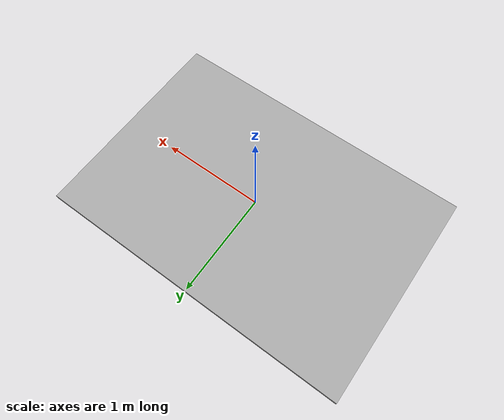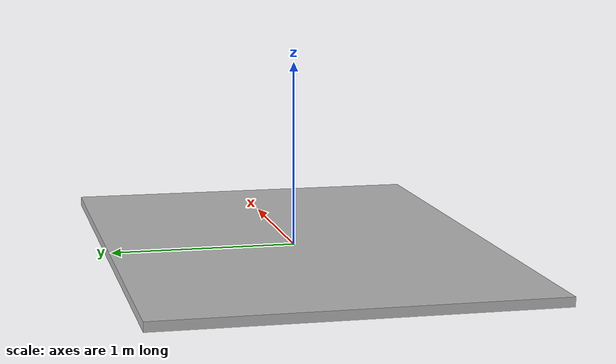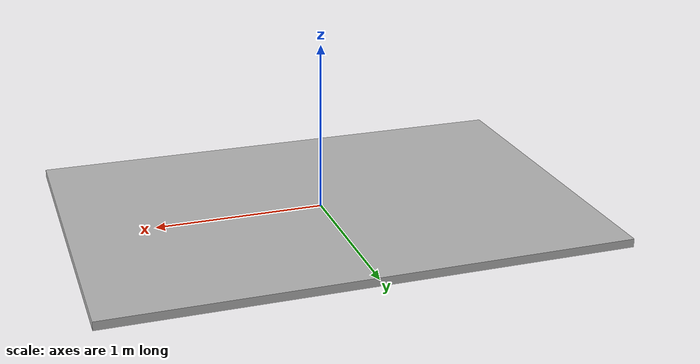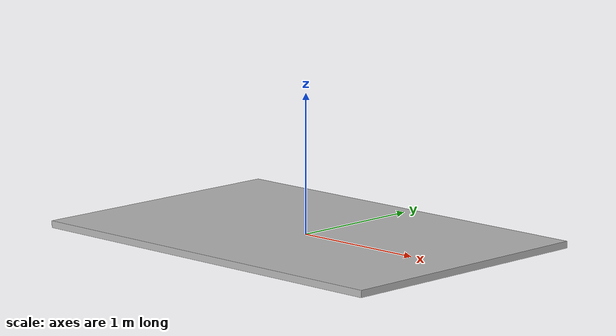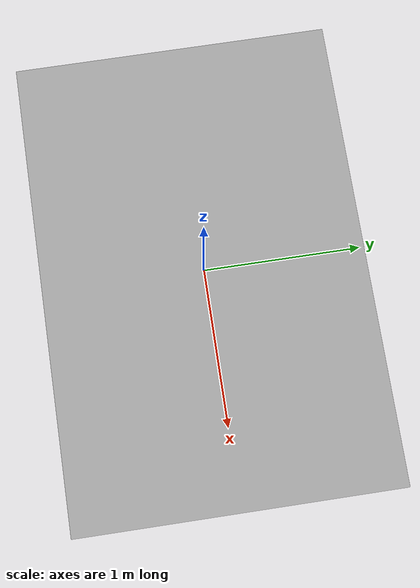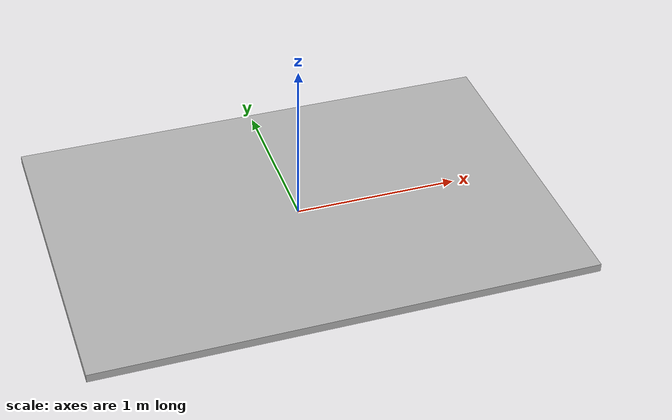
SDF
<?xml version="1.0" ?>
<sdf version="1.5">
  <model name="aruco_marker">
    <static>true</static>
    <link name="link">
      <collision name="collision">
        <geometry>
          <box>
            <size>3.02375 1.9 0.05</size>
          </box>
        </geometry>
      </collision>
      <visual name="visual">
        <pose>0.0 0.0 0 0 0 0</pose>
        <cast_shadows>false</cast_shadows>
        <geometry>
          <box>
            <size>3.02375 2.05 0.05</size>
          </box>
        </geometry>
        <material>
          <script>
            <uri>model://aruco_marker/materials/scripts</uri>
            <uri>model://aruco_marker/materials/textures</uri>
            <name>vrc/marker</name>
          </script>
        </material>
      </visual>
    </link>
  </model>
</sdf>
